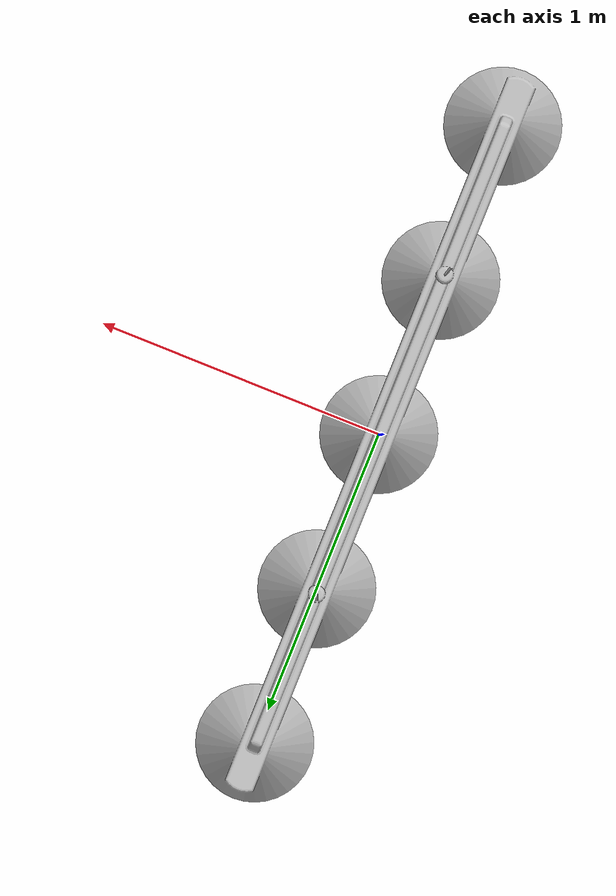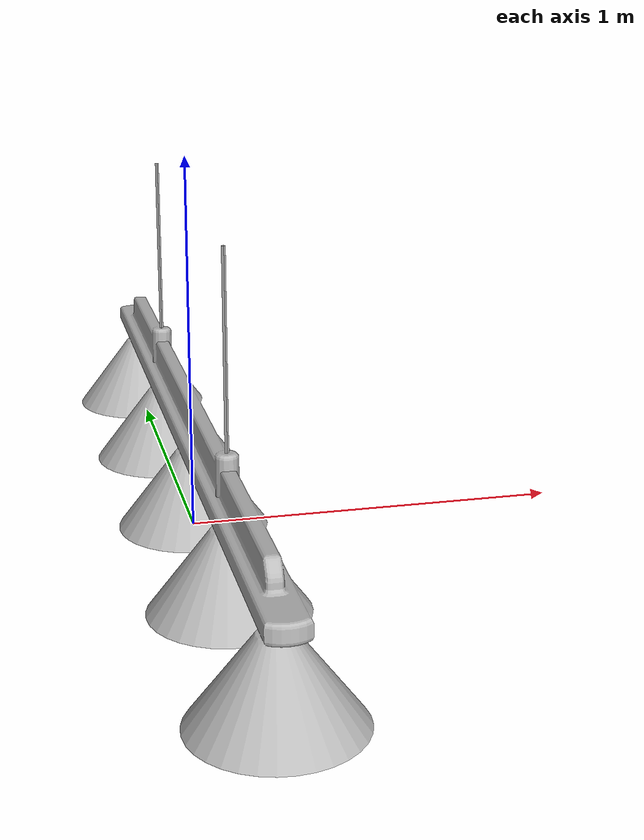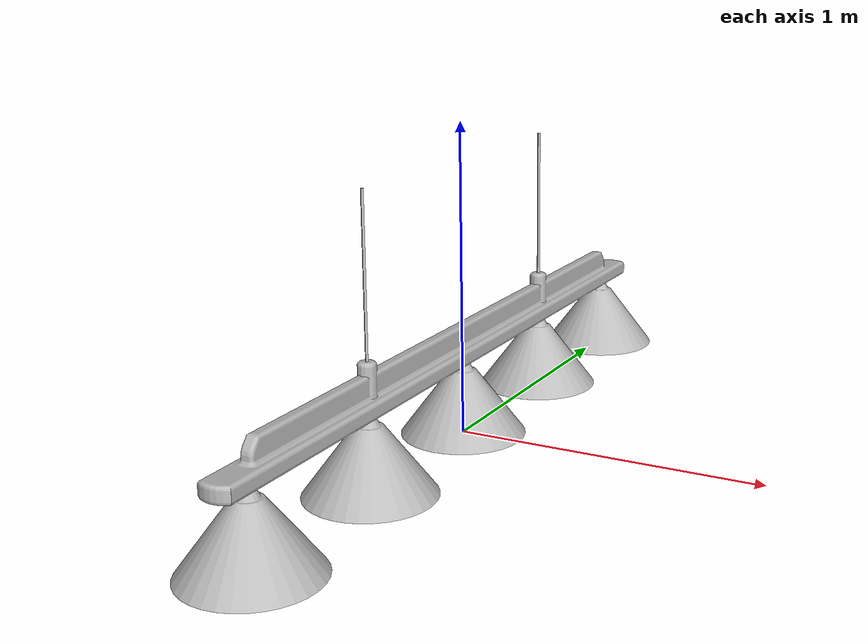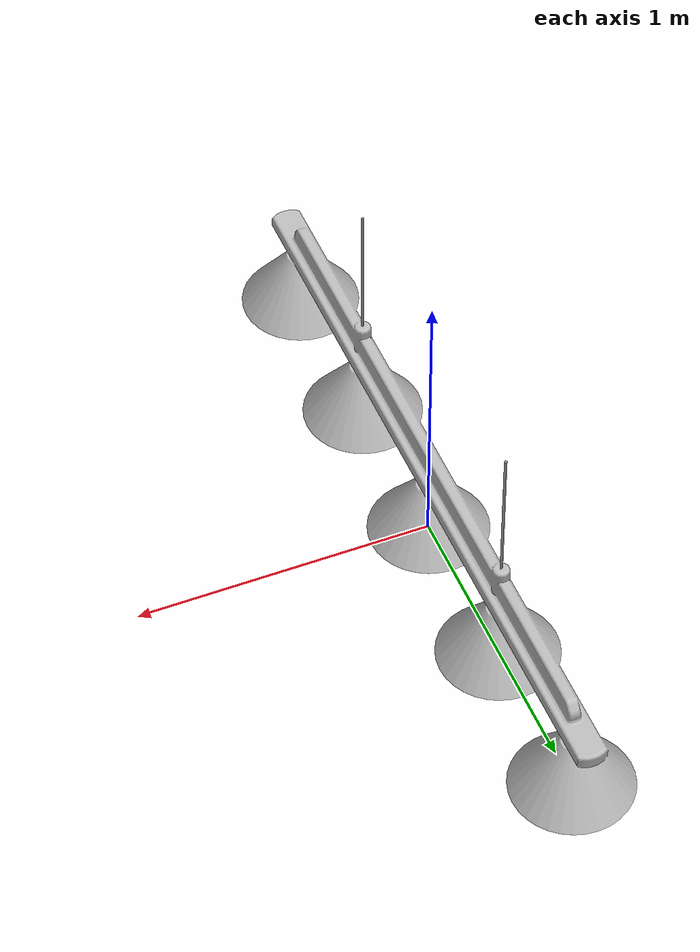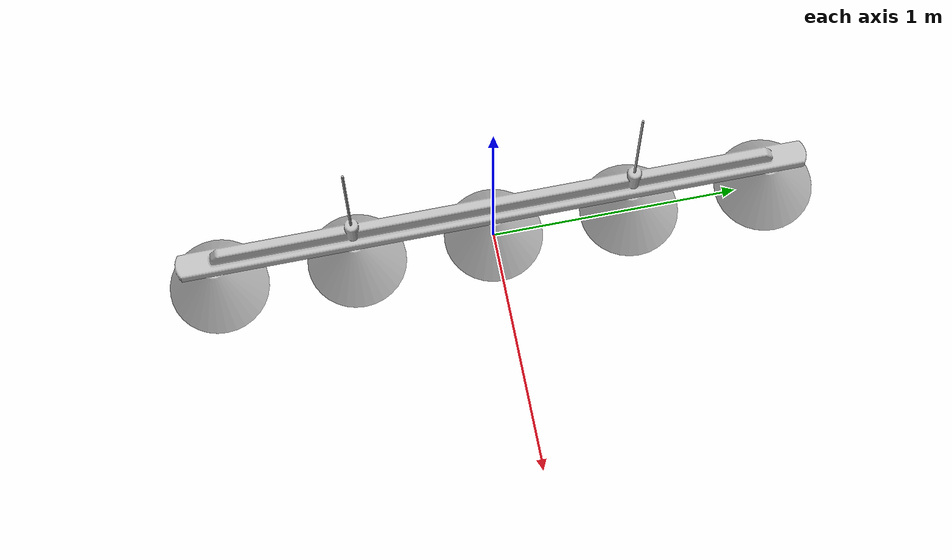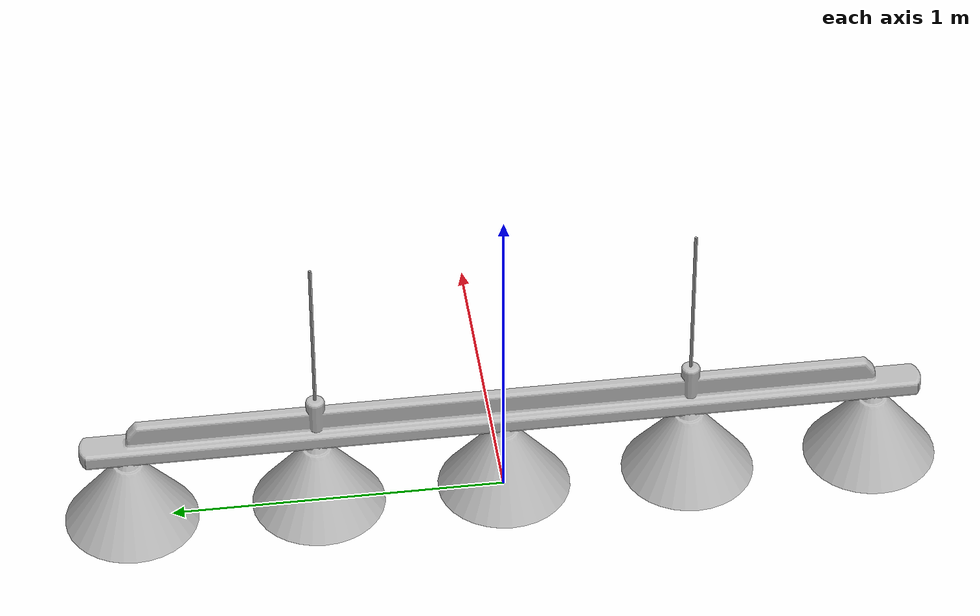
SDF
<?xml version='1.0'?>
<sdf version='1.4'>
  <model name='628'>
    <pose>0 0 0 0 0 0</pose>
    <static>true</static>
    <link name='link'>
      <collision name='collision'>
        <pose>0 0 0 0 0 0</pose>
        <geometry>
          <box>
            <size>0.4 2.64 2</size>
          </box>
        </geometry>
      </collision>
      <visual name='visual'>
        <pose>0 0 0 0 0 0</pose>
        <geometry>
          <mesh><uri>model://628/628.dae</uri></mesh>
        </geometry>
      </visual>
    </link>
  </model>
</sdf>
